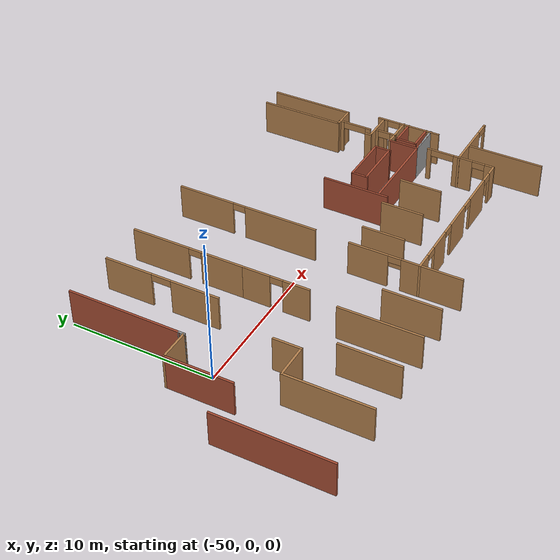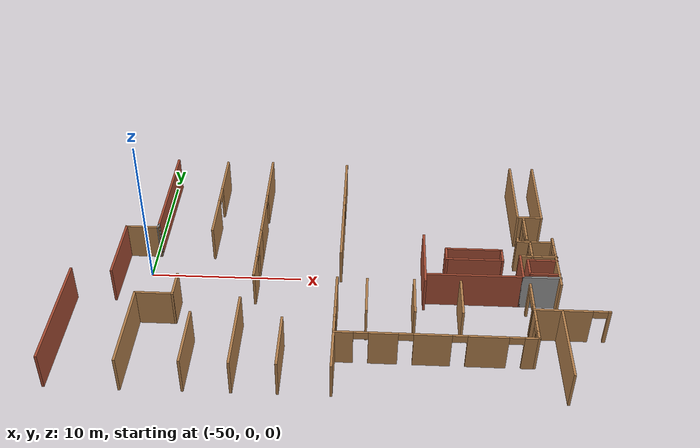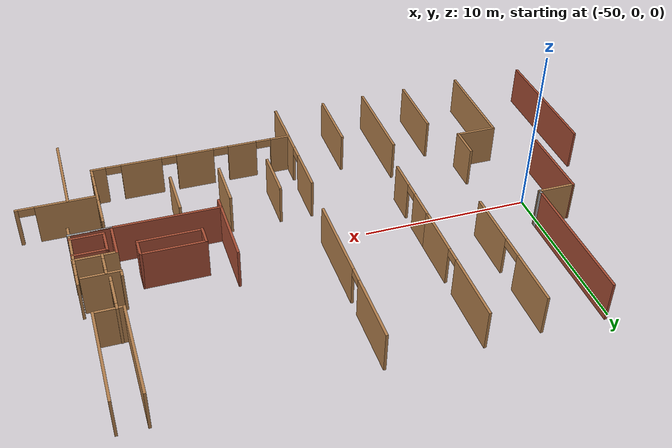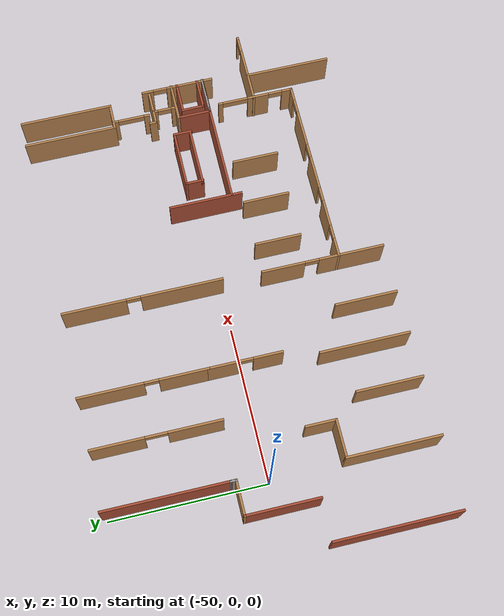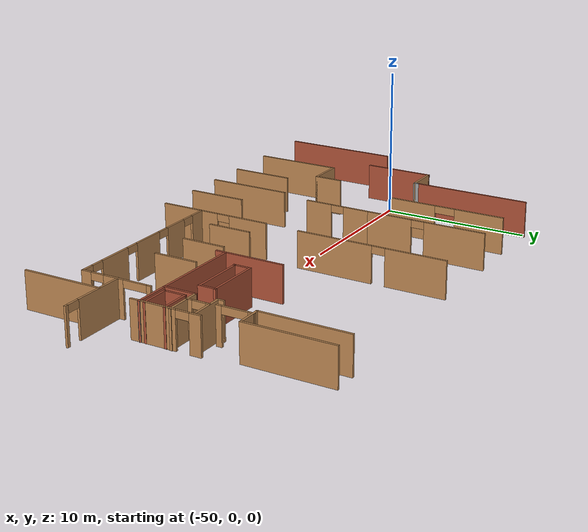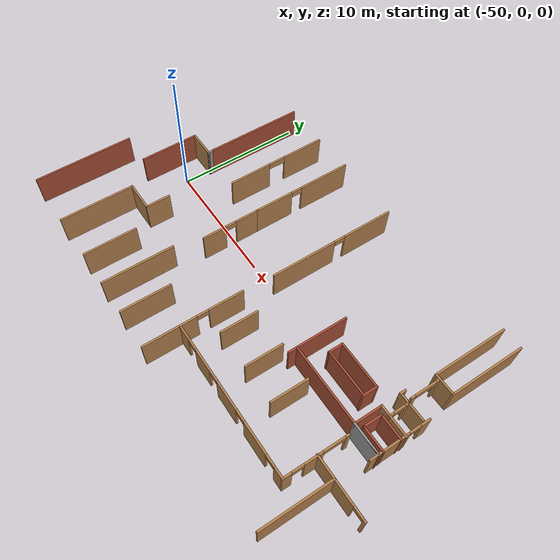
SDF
<sdf version="1.6">
 <model name="third_floor">
  <pose>-4.00866 -0.044756 0 0 -0 0</pose>
  <link name="Wall_10">
   <collision name="Wall_10_Collision">
    <geometry><box><size>2.28863 0.15 2.5</size></box></geometry>
    <pose>0 0 1.25 0 -0 0</pose>
   </collision>
   <visual name="Wall_10_Visual">
    <pose>0 0 1.25 0 -0 0</pose>
    <geometry><box><size>2.28863 0.15 2.5</size></box></geometry>
    <material>
     <script><uri>file://media/materials/scripts/gazebo.material</uri><name>Gazebo/Wood</name></script>
     <ambient>1 1 1 1</ambient>
    </material>
   </visual>
   <pose>-46.7968 2.06319 0 0 0 -0.001948</pose>
  </link>
  <link name="Wall_13">
   <collision name="Wall_13_Collision">
    <geometry><box><size>0.46611 0.15 2.5</size></box></geometry>
    <pose>0 0 1.25 0 -0 0</pose>
   </collision>
   <visual name="Wall_13_Visual">
    <pose>0 0 1.25 0 -0 0</pose>
    <geometry><box><size>0.46611 0.15 2.5</size></box></geometry>
    <material>
     <script><uri>file://media/materials/scripts/gazebo.material</uri><name>Gazebo/Grey</name></script>
     <ambient>1 1 1 1</ambient>
    </material>
   </visual>
   <pose>-45.7292 2.21916 0 0 -0 1.58134</pose>
  </link>
  <link name="Wall_134">
   <pose>-19.4066 -0.197269 0 0 0 -1.5708</pose>
   <visual name="Wall_134_Visual_0">
    <pose>-1.99521 0 1.25 0 -0 0</pose>
    <geometry><box><size>0.75958 0.15 2.5</size></box></geometry>
    <material>
     <script><uri>file://media/materials/scripts/gazebo.material</uri><name>Gazebo/Wood</name></script>
     <ambient>1 1 1 1</ambient>
    </material>
   </visual>
   <collision name="Wall_134_Collision_0">
    <geometry><box><size>0.75958 0.15 2.5</size></box></geometry>
    <pose>-1.99521 0 1.25 0 -0 0</pose>
   </collision>
   <visual name="Wall_134_Visual_1">
    <pose>0.82979 0 1.25 0 -0 0</pose>
    <geometry><box><size>3.09042 0.15 2.5</size></box></geometry>
    <material>
     <script><uri>file://media/materials/scripts/gazebo.material</uri><name>Gazebo/Wood</name></script>
     <ambient>1 1 1 1</ambient>
    </material>
   </visual>
   <collision name="Wall_134_Collision_1">
    <geometry><box><size>3.09042 0.15 2.5</size></box></geometry>
    <pose>0.82979 0 1.25 0 -0 0</pose>
   </collision>
   <visual name="Wall_134_Visual_2">
    <pose>-1.16542 0 2.25 0 -0 0</pose>
    <geometry><box><size>0.9 0.15 0.5</size></box></geometry>
    <material>
     <script><uri>file://media/materials/scripts/gazebo.material</uri><name>Gazebo/Wood</name></script>
     <ambient>1 1 1 1</ambient>
    </material>
   </visual>
   <collision name="Wall_134_Collision_2">
    <geometry><box><size>0.9 0.15 0.5</size></box></geometry>
    <pose>-1.16542 0 2.25 0 -0 0</pose>
   </collision>
  </link>
  <link name="Wall_136">
   <collision name="Wall_136_Collision">
    <geometry><box><size>2.5 0.15 2.5</size></box></geometry>
    <pose>0 0 1.25 0 -0 0</pose>
   </collision>
   <visual name="Wall_136_Visual">
    <pose>0 0 1.25 0 -0 0</pose>
    <geometry><box><size>2.5 0.15 2.5</size></box></geometry>
    <material>
     <script><uri>file://media/materials/scripts/gazebo.material</uri><name>Gazebo/Wood</name></script>
     <ambient>1 1 1 1</ambient>
    </material>
   </visual>
   <pose>-20.5351 0.19525 0 0 -0 3.14159</pose>
  </link>
  <link name="Wall_137">
   <collision name="Wall_137_Collision">
    <geometry><box><size>2.25 0.15 2.5</size></box></geometry>
    <pose>0 0 1.25 0 -0 0</pose>
   </collision>
   <visual name="Wall_137_Visual">
    <pose>0 0 1.25 0 -0 0</pose>
    <geometry><box><size>2.25 0.15 2.5</size></box></geometry>
    <material>
     <script><uri>file://media/materials/scripts/gazebo.material</uri><name>Gazebo/Bricks</name></script>
     <ambient>1 1 1 1</ambient>
    </material>
   </visual>
   <pose>-21.7101 -0.85475 0 0 0 -1.5708</pose>
  </link>
  <link name="Wall_138">
   <collision name="Wall_138_Collision">
    <geometry><box><size>2.5 0.15 2.5</size></box></geometry>
    <pose>0 0 1.25 0 -0 0</pose>
   </collision>
   <visual name="Wall_138_Visual">
    <pose>0 0 1.25 0 -0 0</pose>
    <geometry><box><size>2.5 0.15 2.5</size></box></geometry>
    <material>
     <script><uri>file://media/materials/scripts/gazebo.material</uri><name>Gazebo/Grey</name></script>
     <ambient>1 1 1 1</ambient>
    </material>
   </visual>
   <pose>-20.5351 -1.90475 0 0 -0 0</pose>
  </link>
  <link name="Wall_146">
   <collision name="Wall_146_Collision">
    <geometry><box><size>2 0.15 2.5</size></box></geometry>
    <pose>0 0 1.25 0 -0 0</pose>
   </collision>
   <visual name="Wall_146_Visual">
    <pose>0 0 1.25 0 -0 0</pose>
    <geometry><box><size>2 0.15 2.5</size></box></geometry>
    <material>
     <script><uri>file://media/materials/scripts/gazebo.material</uri><name>Gazebo/Bricks</name></script>
     <ambient>1 1 1 1</ambient>
    </material>
   </visual>
   <pose>-20.3056 -0.187196 0 0 -0 3.14159</pose>
  </link>
  <link name="Wall_147">
   <collision name="Wall_147_Collision">
    <geometry><box><size>1.51744 0.15 2.5</size></box></geometry>
    <pose>0 0 1.25 0 -0 0</pose>
   </collision>
   <visual name="Wall_147_Visual">
    <pose>0 0 1.25 0 -0 0</pose>
    <geometry><box><size>1.51744 0.15 2.5</size></box></geometry>
    <material>
     <script><uri>file://media/materials/scripts/gazebo.material</uri><name>Gazebo/Bricks</name></script>
     <ambient>1 1 1 1</ambient>
    </material>
   </visual>
   <pose>-21.2496 -0.870915 0 0 0 -1.56855</pose>
  </link>
  <link name="Wall_148">
   <collision name="Wall_148_Collision">
    <geometry><box><size>2 0.15 2.5</size></box></geometry>
    <pose>0 0 1.25 0 -0 0</pose>
   </collision>
   <visual name="Wall_148_Visual">
    <pose>0 0 1.25 0 -0 0</pose>
    <geometry><box><size>2 0.15 2.5</size></box></geometry>
    <material>
     <script><uri>file://media/materials/scripts/gazebo.material</uri><name>Gazebo/Bricks</name></script>
     <ambient>1 1 1 1</ambient>
    </material>
   </visual>
   <pose>-20.3128 -1.55463 0 0 -0 0</pose>
  </link>
  <link name="Wall_162">
   <collision name="Wall_162_Collision">
    <geometry><box><size>0.5 0.15 2.5</size></box></geometry>
    <pose>0 0 1.25 0 -0 0</pose>
   </collision>
   <visual name="Wall_162_Visual">
    <pose>0 0 1.25 0 -0 0</pose>
    <geometry><box><size>0.5 0.15 2.5</size></box></geometry>
    <material>
     <script><uri>file://media/materials/scripts/gazebo.material</uri><name>Gazebo/Wood</name></script>
     <ambient>1 1 1 1</ambient>
    </material>
   </visual>
   <pose>-21.7009 1.88776 0 0 0 -1.5708</pose>
  </link>
  <link name="Wall_163">
   <collision name="Wall_163_Collision">
    <geometry><box><size>2.25 0.15 2.5</size></box></geometry>
    <pose>0 0 1.25 0 -0 0</pose>
   </collision>
   <visual name="Wall_163_Visual">
    <pose>0 0 1.25 0 -0 0</pose>
    <geometry><box><size>2.25 0.15 2.5</size></box></geometry>
    <material>
     <script><uri>file://media/materials/scripts/gazebo.material</uri><name>Gazebo/Wood</name></script>
     <ambient>1 1 1 1</ambient>
    </material>
   </visual>
   <pose>-20.6509 1.71276 0 0 -0 0</pose>
  </link>
  <link name="Wall_165">
   <pose>-20.9277 0.928618 0 0 0 -1.56979</pose>
   <visual name="Wall_165_Visual_0">
    <pose>-0.664878 0 1.25 0 -0 0</pose>
    <geometry><box><size>0.314831 0.15 2.5</size></box></geometry>
    <material>
     <script><uri>file://media/materials/scripts/gazebo.material</uri><name>Gazebo/Wood</name></script>
     <ambient>1 1 1 1</ambient>
    </material>
   </visual>
   <collision name="Wall_165_Collision_0">
    <geometry><box><size>0.314831 0.15 2.5</size></box></geometry>
    <pose>-0.664878 0 1.25 0 -0 0</pose>
   </collision>
   <visual name="Wall_165_Visual_1">
    <pose>0.607416 0 1.25 0 -0 0</pose>
    <geometry><box><size>0.429757 0.15 2.5</size></box></geometry>
    <material>
     <script><uri>file://media/materials/scripts/gazebo.material</uri><name>Gazebo/Wood</name></script>
     <ambient>1 1 1 1</ambient>
    </material>
   </visual>
   <collision name="Wall_165_Collision_1">
    <geometry><box><size>0.429757 0.15 2.5</size></box></geometry>
    <pose>0.607416 0 1.25 0 -0 0</pose>
   </collision>
   <visual name="Wall_165_Visual_2">
    <pose>-0.057463 0 2.25 0 -0 0</pose>
    <geometry><box><size>0.9 0.15 0.5</size></box></geometry>
    <material>
     <script><uri>file://media/materials/scripts/gazebo.material</uri><name>Gazebo/Wood</name></script>
     <ambient>1 1 1 1</ambient>
    </material>
   </visual>
   <collision name="Wall_165_Collision_2">
    <geometry><box><size>0.9 0.15 0.5</size></box></geometry>
    <pose>-0.057463 0 2.25 0 -0 0</pose>
   </collision>
  </link>
  <link name="Wall_168">
   <collision name="Wall_168_Collision">
    <geometry><box><size>4.75 0.15 2.5</size></box></geometry>
    <pose>0 0 1.25 0 -0 0</pose>
   </collision>
   <visual name="Wall_168_Visual">
    <pose>0 0 1.25 0 -0 0</pose>
    <geometry><box><size>4.75 0.15 2.5</size></box></geometry>
    <material>
     <script><uri>file://media/materials/scripts/gazebo.material</uri><name>Gazebo/Bricks</name></script>
     <ambient>1 1 1 1</ambient>
    </material>
   </visual>
   <pose>-27.8909 -0.217787 0 0 0 -1.5708</pose>
  </link>
  <link name="Wall_172">
   <collision name="Wall_172_Collision">
    <geometry><box><size>8.64986 0.15 2.5</size></box></geometry>
    <pose>0 0 1.25 0 -0 0</pose>
   </collision>
   <visual name="Wall_172_Visual">
    <pose>0 0 1.25 0 -0 0</pose>
    <geometry><box><size>8.64986 0.15 2.5</size></box></geometry>
    <material>
     <script><uri>file://media/materials/scripts/gazebo.material</uri><name>Gazebo/Bricks</name></script>
     <ambient>1 1 1 1</ambient>
    </material>
   </visual>
   <pose>-23.61 -1.90275 0 0 -0 3.14112</pose>
  </link>
  <link name="Wall_180">
   <collision name="Wall_180_Collision">
    <geometry><box><size>6 0.15 2.5</size></box></geometry>
    <pose>0 0 1.25 0 -0 0</pose>
   </collision>
   <visual name="Wall_180_Visual">
    <pose>0 0 1.25 0 -0 0</pose>
    <geometry><box><size>6 0.15 2.5</size></box></geometry>
    <material>
     <script><uri>file://media/materials/scripts/gazebo.material</uri><name>Gazebo/Wood</name></script>
     <ambient>1 1 1 1</ambient>
    </material>
   </visual>
   <pose>-21.4505 7.33512 0 0 0 -1.5708</pose>
  </link>
  <link name="Wall_181">
   <collision name="Wall_181_Collision">
    <geometry><box><size>1.75 0.15 2.5</size></box></geometry>
    <pose>0 0 1.25 0 -0 0</pose>
   </collision>
   <visual name="Wall_181_Visual">
    <pose>0 0 1.25 0 -0 0</pose>
    <geometry><box><size>1.75 0.15 2.5</size></box></geometry>
    <material>
     <script><uri>file://media/materials/scripts/gazebo.material</uri><name>Gazebo/Wood</name></script>
     <ambient>1 1 1 1</ambient>
    </material>
   </visual>
   <pose>-20.6505 4.41013 0 0 -0 0</pose>
  </link>
  <link name="Wall_182">
   <collision name="Wall_182_Collision">
    <geometry><box><size>6 0.15 2.5</size></box></geometry>
    <pose>0 0 1.25 0 -0 0</pose>
   </collision>
   <visual name="Wall_182_Visual">
    <pose>0 0 1.25 0 -0 0</pose>
    <geometry><box><size>6 0.15 2.5</size></box></geometry>
    <material>
     <script><uri>file://media/materials/scripts/gazebo.material</uri><name>Gazebo/Wood</name></script>
     <ambient>1 1 1 1</ambient>
    </material>
   </visual>
   <pose>-19.8505 7.33512 0 0 -0 1.5708</pose>
  </link>
  <link name="Wall_220">
   <pose>-21.0801 3.26181 0 0 0 -1.5708</pose>
   <visual name="Wall_220_Visual_0">
    <pose>-1.04045 0 1.25 0 -0 0</pose>
    <geometry><box><size>0.419092 0.15 2.5</size></box></geometry>
    <material>
     <script><uri>file://media/materials/scripts/gazebo.material</uri><name>Gazebo/Wood</name></script>
     <ambient>1 1 1 1</ambient>
    </material>
   </visual>
   <collision name="Wall_220_Collision_0">
    <geometry><box><size>0.419092 0.15 2.5</size></box></geometry>
    <pose>-1.04045 0 1.25 0 -0 0</pose>
   </collision>
   <visual name="Wall_220_Visual_1">
    <pose>1.06175 0 1.25 0 -0 0</pose>
    <geometry><box><size>0.376504 0.15 2.5</size></box></geometry>
    <material>
     <script><uri>file://media/materials/scripts/gazebo.material</uri><name>Gazebo/Wood</name></script>
     <ambient>1 1 1 1</ambient>
    </material>
   </visual>
   <collision name="Wall_220_Collision_1">
    <geometry><box><size>0.376504 0.15 2.5</size></box></geometry>
    <pose>1.06175 0 1.25 0 -0 0</pose>
   </collision>
   <visual name="Wall_220_Visual_2">
    <pose>0.021294 0 2.25 0 -0 0</pose>
    <geometry><box><size>1.7044 0.15 0.5</size></box></geometry>
    <material>
     <script><uri>file://media/materials/scripts/gazebo.material</uri><name>Gazebo/Wood</name></script>
     <ambient>1 1 1 1</ambient>
    </material>
   </visual>
   <collision name="Wall_220_Collision_2">
    <geometry><box><size>1.7044 0.15 0.5</size></box></geometry>
    <pose>0.021294 0 2.25 0 -0 0</pose>
   </collision>
  </link>
  <link name="Wall_229">
   <collision name="Wall_229_Collision">
    <geometry><box><size>3 0.15 2.5</size></box></geometry>
    <pose>0 0 1.25 0 -0 0</pose>
   </collision>
   <visual name="Wall_229_Visual">
    <pose>0 0 1.25 0 -0 0</pose>
    <geometry><box><size>3 0.15 2.5</size></box></geometry>
    <material>
     <script><uri>file://media/materials/scripts/gazebo.material</uri><name>Gazebo/Wood</name></script>
     <ambient>1 1 1 1</ambient>
    </material>
   </visual>
   <pose>-31.5578 -4.03028 0 0 0 -1.5708</pose>
  </link>
  <link name="Wall_231">
   <collision name="Wall_231_Collision">
    <geometry><box><size>3 0.15 2.5</size></box></geometry>
    <pose>0 0 1.25 0 -0 0</pose>
   </collision>
   <visual name="Wall_231_Visual">
    <pose>0 0 1.25 0 -0 0</pose>
    <geometry><box><size>3 0.15 2.5</size></box></geometry>
    <material>
     <script><uri>file://media/materials/scripts/gazebo.material</uri><name>Gazebo/Wood</name></script>
     <ambient>1 1 1 1</ambient>
    </material>
   </visual>
   <pose>-28.5928 -3.99503 0 0 0 -1.5708</pose>
  </link>
  <link name="Wall_233">
   <collision name="Wall_233_Collision">
    <geometry><box><size>3 0.15 2.5</size></box></geometry>
    <pose>0 0 1.25 0 -0 0</pose>
   </collision>
   <visual name="Wall_233_Visual">
    <pose>0 0 1.25 0 -0 0</pose>
    <geometry><box><size>3 0.15 2.5</size></box></geometry>
    <material>
     <script><uri>file://media/materials/scripts/gazebo.material</uri><name>Gazebo/Wood</name></script>
     <ambient>1 1 1 1</ambient>
    </material>
   </visual>
   <pose>-25.6753 -3.99543 0 0 0 -1.5708</pose>
  </link>
  <link name="Wall_242">
   <collision name="Wall_242_Collision">
    <geometry><box><size>1.22688 0.15 2.5</size></box></geometry>
    <pose>0 0 1.25 0 -0 0</pose>
   </collision>
   <visual name="Wall_242_Visual">
    <pose>0 0 1.25 0 -0 0</pose>
    <geometry><box><size>1.22688 0.15 2.5</size></box></geometry>
    <material>
     <script><uri>file://media/materials/scripts/gazebo.material</uri><name>Gazebo/Bricks</name></script>
     <ambient>1 1 1 1</ambient>
    </material>
   </visual>
   <pose>-26.4679 0.194461 0 0 0 -1.5708</pose>
  </link>
  <link name="Wall_243">
   <collision name="Wall_243_Collision">
    <geometry><box><size>3.75 0.15 2.5</size></box></geometry>
    <pose>0 0 1.25 0 -0 0</pose>
   </collision>
   <visual name="Wall_243_Visual">
    <pose>0 0 1.25 0 -0 0</pose>
    <geometry><box><size>3.75 0.15 2.5</size></box></geometry>
    <material>
     <script><uri>file://media/materials/scripts/gazebo.material</uri><name>Gazebo/Bricks</name></script>
     <ambient>1 1 1 1</ambient>
    </material>
   </visual>
   <pose>-24.6679 -0.302729 0 0 -0 0</pose>
  </link>
  <link name="Wall_244">
   <collision name="Wall_244_Collision">
    <geometry><box><size>1.22688 0.15 2.5</size></box></geometry>
    <pose>0 0 1.25 0 -0 0</pose>
   </collision>
   <visual name="Wall_244_Visual">
    <pose>0 0 1.25 0 -0 0</pose>
    <geometry><box><size>1.22688 0.15 2.5</size></box></geometry>
    <material>
     <script><uri>file://media/materials/scripts/gazebo.material</uri><name>Gazebo/Bricks</name></script>
     <ambient>1 1 1 1</ambient>
    </material>
   </visual>
   <pose>-22.8679 0.194461 0 0 -0 1.5708</pose>
  </link>
  <link name="Wall_245">
   <collision name="Wall_245_Collision">
    <geometry><box><size>3.75 0.15 2.5</size></box></geometry>
    <pose>0 0 1.25 0 -0 0</pose>
   </collision>
   <visual name="Wall_245_Visual">
    <pose>0 0 1.25 0 -0 0</pose>
    <geometry><box><size>3.75 0.15 2.5</size></box></geometry>
    <material>
     <script><uri>file://media/materials/scripts/gazebo.material</uri><name>Gazebo/Bricks</name></script>
     <ambient>1 1 1 1</ambient>
    </material>
   </visual>
   <pose>-24.6679 0.732903 0 0 -0 3.14159</pose>
  </link>
  <link name="Wall_3">
   <collision name="Wall_3_Collision">
    <geometry><box><size>7.98809 0.15 2.5</size></box></geometry>
    <pose>0 0 1.25 0 -0 0</pose>
   </collision>
   <visual name="Wall_3_Visual">
    <pose>0 0 1.25 0 -0 0</pose>
    <geometry><box><size>7.98809 0.15 2.5</size></box></geometry>
    <material>
     <script><uri>file://media/materials/scripts/gazebo.material</uri><name>Gazebo/Bricks</name></script>
     <ambient>1 1 1 1</ambient>
    </material>
   </visual>
   <pose>-45.7234 6.29624 0 0 -0 1.56889</pose>
  </link>
  <link name="Wall_33">
   <collision name="Wall_33_Collision">
    <geometry><box><size>8 0.15 2.5</size></box></geometry>
    <pose>0 0 1.25 0 -0 0</pose>
   </collision>
   <visual name="Wall_33_Visual">
    <pose>0 0 1.25 0 -0 0</pose>
    <geometry><box><size>8 0.15 2.5</size></box></geometry>
    <material>
     <script><uri>file://media/materials/scripts/gazebo.material</uri><name>Gazebo/Bricks</name></script>
     <ambient>1 1 1 1</ambient>
    </material>
   </visual>
   <pose>-50.4776 -6.46389 0 0 0 -1.5708</pose>
  </link>
  <link name="Wall_38">
   <pose>-38.7586 -0.184782 0 0 0 -1.5708</pose>
   <visual name="Wall_38_Visual_0">
    <pose>-1.39379 0 1.25 0 -0 0</pose>
    <geometry><box><size>1.96241 0.15 2.5</size></box></geometry>
    <material>
     <script><uri>file://media/materials/scripts/gazebo.material</uri><name>Gazebo/Wood</name></script>
     <ambient>1 1 1 1</ambient>
    </material>
   </visual>
   <collision name="Wall_38_Collision_0">
    <geometry><box><size>1.96241 0.15 2.5</size></box></geometry>
    <pose>-1.39379 0 1.25 0 -0 0</pose>
   </collision>
   <visual name="Wall_38_Visual_1">
    <pose>1.43121 0 1.25 0 -0 0</pose>
    <geometry><box><size>1.88759 0.15 2.5</size></box></geometry>
    <material>
     <script><uri>file://media/materials/scripts/gazebo.material</uri><name>Gazebo/Wood</name></script>
     <ambient>1 1 1 1</ambient>
    </material>
   </visual>
   <collision name="Wall_38_Collision_1">
    <geometry><box><size>1.88759 0.15 2.5</size></box></geometry>
    <pose>1.43121 0 1.25 0 -0 0</pose>
   </collision>
   <visual name="Wall_38_Visual_2">
    <pose>0.037409 0 2.25 0 -0 0</pose>
    <geometry><box><size>0.9 0.15 0.5</size></box></geometry>
    <material>
     <script><uri>file://media/materials/scripts/gazebo.material</uri><name>Gazebo/Wood</name></script>
     <ambient>1 1 1 1</ambient>
    </material>
   </visual>
   <collision name="Wall_38_Collision_2">
    <geometry><box><size>0.9 0.15 0.5</size></box></geometry>
    <pose>0.037409 0 2.25 0 -0 0</pose>
   </collision>
  </link>
  <link name="Wall_40">
   <pose>-33.3181 5.05677 0 0 0 -1.5708</pose>
   <visual name="Wall_40_Visual_0">
    <pose>-3.07567 0 1.25 0 -0 0</pose>
    <geometry><box><size>4.09866 0.15 2.5</size></box></geometry>
    <material>
     <script><uri>file://media/materials/scripts/gazebo.material</uri><name>Gazebo/Wood</name></script>
     <ambient>1 1 1 1</ambient>
    </material>
   </visual>
   <collision name="Wall_40_Collision_0">
    <geometry><box><size>4.09866 0.15 2.5</size></box></geometry>
    <pose>-3.07567 0 1.25 0 -0 0</pose>
   </collision>
   <visual name="Wall_40_Visual_1">
    <pose>2.49933 0 1.25 0 -0 0</pose>
    <geometry><box><size>5.25134 0.15 2.5</size></box></geometry>
    <material>
     <script><uri>file://media/materials/scripts/gazebo.material</uri><name>Gazebo/Wood</name></script>
     <ambient>1 1 1 1</ambient>
    </material>
   </visual>
   <collision name="Wall_40_Collision_1">
    <geometry><box><size>5.25134 0.15 2.5</size></box></geometry>
    <pose>2.49933 0 1.25 0 -0 0</pose>
   </collision>
   <visual name="Wall_40_Visual_2">
    <pose>-0.576335 0 2.25 0 -0 0</pose>
    <geometry><box><size>0.9 0.15 0.5</size></box></geometry>
    <material>
     <script><uri>file://media/materials/scripts/gazebo.material</uri><name>Gazebo/Wood</name></script>
     <ambient>1 1 1 1</ambient>
    </material>
   </visual>
   <collision name="Wall_40_Collision_2">
    <geometry><box><size>0.9 0.15 0.5</size></box></geometry>
    <pose>-0.576335 0 2.25 0 -0 0</pose>
   </collision>
  </link>
  <link name="Wall_42">
   <pose>-38.7586 6.16522 0 0 -0 1.5708</pose>
   <visual name="Wall_42_Visual_0">
    <pose>-2.54325 0 1.25 0 -0 0</pose>
    <geometry><box><size>3.16351 0.15 2.5</size></box></geometry>
    <material>
     <script><uri>file://media/materials/scripts/gazebo.material</uri><name>Gazebo/Wood</name></script>
     <ambient>1 1 1 1</ambient>
    </material>
   </visual>
   <collision name="Wall_42_Collision_0">
    <geometry><box><size>3.16351 0.15 2.5</size></box></geometry>
    <pose>-2.54325 0 1.25 0 -0 0</pose>
   </collision>
   <visual name="Wall_42_Visual_1">
    <pose>2.03175 0 1.25 0 -0 0</pose>
    <geometry><box><size>4.18649 0.15 2.5</size></box></geometry>
    <material>
     <script><uri>file://media/materials/scripts/gazebo.material</uri><name>Gazebo/Wood</name></script>
     <ambient>1 1 1 1</ambient>
    </material>
   </visual>
   <collision name="Wall_42_Collision_1">
    <geometry><box><size>4.18649 0.15 2.5</size></box></geometry>
    <pose>2.03175 0 1.25 0 -0 0</pose>
   </collision>
   <visual name="Wall_42_Visual_2">
    <pose>-0.511489 0 2.25 0 -0 0</pose>
    <geometry><box><size>0.9 0.15 0.5</size></box></geometry>
    <material>
     <script><uri>file://media/materials/scripts/gazebo.material</uri><name>Gazebo/Wood</name></script>
     <ambient>1 1 1 1</ambient>
    </material>
   </visual>
   <collision name="Wall_42_Collision_2">
    <geometry><box><size>0.9 0.15 0.5</size></box></geometry>
    <pose>-0.511489 0 2.25 0 -0 0</pose>
   </collision>
  </link>
  <link name="Wall_44">
   <pose>-42.0333 6.05533 0 0 -0 1.5708</pose>
   <visual name="Wall_44_Visual_0">
    <pose>-2.41095 0 1.25 0 -0 0</pose>
    <geometry><box><size>3.42809 0.15 2.5</size></box></geometry>
    <material>
     <script><uri>file://media/materials/scripts/gazebo.material</uri><name>Gazebo/Wood</name></script>
     <ambient>1 1 1 1</ambient>
    </material>
   </visual>
   <collision name="Wall_44_Collision_0">
    <geometry><box><size>3.42809 0.15 2.5</size></box></geometry>
    <pose>-2.41095 0 1.25 0 -0 0</pose>
   </collision>
   <visual name="Wall_44_Visual_1">
    <pose>2.41155 0 1.25 0 -0 0</pose>
    <geometry><box><size>3.42689 0.15 2.5</size></box></geometry>
    <material>
     <script><uri>file://media/materials/scripts/gazebo.material</uri><name>Gazebo/Wood</name></script>
     <ambient>1 1 1 1</ambient>
    </material>
   </visual>
   <collision name="Wall_44_Collision_1">
    <geometry><box><size>3.42689 0.15 2.5</size></box></geometry>
    <pose>2.41155 0 1.25 0 -0 0</pose>
   </collision>
   <visual name="Wall_44_Visual_2">
    <pose>0.000599 0 2.25 0 -0 0</pose>
    <geometry><box><size>1.39502 0.15 0.5</size></box></geometry>
    <material>
     <script><uri>file://media/materials/scripts/gazebo.material</uri><name>Gazebo/Wood</name></script>
     <ambient>1 1 1 1</ambient>
    </material>
   </visual>
   <collision name="Wall_44_Collision_2">
    <geometry><box><size>1.39502 0.15 0.5</size></box></geometry>
    <pose>0.000599 0 2.25 0 -0 0</pose>
   </collision>
  </link>
  <link name="Wall_46">
   <collision name="Wall_46_Collision">
    <geometry><box><size>6 0.15 2.5</size></box></geometry>
    <pose>0 0 1.25 0 -0 0</pose>
   </collision>
   <visual name="Wall_46_Visual">
    <pose>0 0 1.25 0 -0 0</pose>
    <geometry><box><size>6 0.15 2.5</size></box></geometry>
    <material>
     <script><uri>file://media/materials/scripts/gazebo.material</uri><name>Gazebo/Wood</name></script>
     <ambient>1 1 1 1</ambient>
    </material>
   </visual>
   <pose>-45.935 -7.50283 0 0 -0 1.5708</pose>
  </link>
  <link name="Wall_47">
   <collision name="Wall_47_Collision">
    <geometry><box><size>2.5 0.15 2.5</size></box></geometry>
    <pose>0 0 1.25 0 -0 0</pose>
   </collision>
   <visual name="Wall_47_Visual">
    <pose>0 0 1.25 0 -0 0</pose>
    <geometry><box><size>2.5 0.15 2.5</size></box></geometry>
    <material>
     <script><uri>file://media/materials/scripts/gazebo.material</uri><name>Gazebo/Wood</name></script>
     <ambient>1 1 1 1</ambient>
    </material>
   </visual>
   <pose>-44.76 -4.57783 0 0 -0 0</pose>
  </link>
  <link name="Wall_48">
   <collision name="Wall_48_Collision">
    <geometry><box><size>2 0.15 2.5</size></box></geometry>
    <pose>0 0 1.25 0 -0 0</pose>
   </collision>
   <visual name="Wall_48_Visual">
    <pose>0 0 1.25 0 -0 0</pose>
    <geometry><box><size>2 0.15 2.5</size></box></geometry>
    <material>
     <script><uri>file://media/materials/scripts/gazebo.material</uri><name>Gazebo/Wood</name></script>
     <ambient>1 1 1 1</ambient>
    </material>
   </visual>
   <pose>-43.585 -3.65283 0 0 -0 1.5708</pose>
  </link>
  <link name="Wall_50">
   <collision name="Wall_50_Collision">
    <geometry><box><size>4.25 0.15 2.5</size></box></geometry>
    <pose>0 0 1.25 0 -0 0</pose>
   </collision>
   <visual name="Wall_50_Visual">
    <pose>0 0 1.25 0 -0 0</pose>
    <geometry><box><size>4.25 0.15 2.5</size></box></geometry>
    <material>
     <script><uri>file://media/materials/scripts/gazebo.material</uri><name>Gazebo/Wood</name></script>
     <ambient>1 1 1 1</ambient>
    </material>
   </visual>
   <pose>-42.2116 -8.296 0 0 -0 1.5708</pose>
  </link>
  <link name="Wall_52">
   <collision name="Wall_52_Collision">
    <geometry><box><size>5.75 0.15 2.5</size></box></geometry>
    <pose>0 0 1.25 0 -0 0</pose>
   </collision>
   <visual name="Wall_52_Visual">
    <pose>0 0 1.25 0 -0 0</pose>
    <geometry><box><size>5.75 0.15 2.5</size></box></geometry>
    <material>
     <script><uri>file://media/materials/scripts/gazebo.material</uri><name>Gazebo/Wood</name></script>
     <ambient>1 1 1 1</ambient>
    </material>
   </visual>
   <pose>-39.3475 -7.546 0 0 -0 1.5708</pose>
  </link>
  <link name="Wall_54">
   <collision name="Wall_54_Collision">
    <geometry><box><size>4 0.15 2.5</size></box></geometry>
    <pose>0 0 1.25 0 -0 0</pose>
   </collision>
   <visual name="Wall_54_Visual">
    <pose>0 0 1.25 0 -0 0</pose>
    <geometry><box><size>4 0.15 2.5</size></box></geometry>
    <material>
     <script><uri>file://media/materials/scripts/gazebo.material</uri><name>Gazebo/Wood</name></script>
     <ambient>1 1 1 1</ambient>
    </material>
   </visual>
   <pose>-36.6061 -8.38008 0 0 -0 1.5708</pose>
  </link>
  <link name="Wall_56">
   <pose>-33.4547 -6.44649 0 0 -0 1.57058</pose>
   <visual name="Wall_56_Visual_0">
    <pose>-1.85365 0 1.25 0 -0 0</pose>
    <geometry><box><size>4.20706 0.15 2.5</size></box></geometry>
    <material>
     <script><uri>file://media/materials/scripts/gazebo.material</uri><name>Gazebo/Wood</name></script>
     <ambient>1 1 1 1</ambient>
    </material>
   </visual>
   <collision name="Wall_56_Collision_0">
    <geometry><box><size>4.20706 0.15 2.5</size></box></geometry>
    <pose>-1.85365 0 1.25 0 -0 0</pose>
   </collision>
   <visual name="Wall_56_Visual_1">
    <pose>2.55353 0 1.25 0 -0 0</pose>
    <geometry><box><size>2.8073 0.15 2.5</size></box></geometry>
    <material>
     <script><uri>file://media/materials/scripts/gazebo.material</uri><name>Gazebo/Wood</name></script>
     <ambient>1 1 1 1</ambient>
    </material>
   </visual>
   <collision name="Wall_56_Collision_1">
    <geometry><box><size>2.8073 0.15 2.5</size></box></geometry>
    <pose>2.55353 0 1.25 0 -0 0</pose>
   </collision>
   <visual name="Wall_56_Visual_2">
    <pose>0.699877 0 2.25 0 -0 0</pose>
    <geometry><box><size>0.9 0.15 0.5</size></box></geometry>
    <material>
     <script><uri>file://media/materials/scripts/gazebo.material</uri><name>Gazebo/Wood</name></script>
     <ambient>1 1 1 1</ambient>
    </material>
   </visual>
   <collision name="Wall_56_Collision_2">
    <geometry><box><size>0.9 0.15 0.5</size></box></geometry>
    <pose>0.699877 0 2.25 0 -0 0</pose>
   </collision>
  </link>
  <link name="Wall_58">
   <pose>-27.4055 -7.48186 0 0 -0 0</pose>
   <visual name="Wall_58_Visual_0">
    <pose>-5.50594 0 1.25 0 -0 0</pose>
    <geometry><box><size>1.23812 0.15 2.5</size></box></geometry>
    <material>
     <script><uri>file://media/materials/scripts/gazebo.material</uri><name>Gazebo/Wood</name></script>
     <ambient>1 1 1 1</ambient>
    </material>
   </visual>
   <collision name="Wall_58_Collision_0">
    <geometry><box><size>1.23812 0.15 2.5</size></box></geometry>
    <pose>-5.50594 0 1.25 0 -0 0</pose>
   </collision>
   <visual name="Wall_58_Visual_1">
    <pose>-3.09672 0 1.25 0 -0 0</pose>
    <geometry><box><size>1.78032 0.15 2.5</size></box></geometry>
    <material>
     <script><uri>file://media/materials/scripts/gazebo.material</uri><name>Gazebo/Wood</name></script>
     <ambient>1 1 1 1</ambient>
    </material>
   </visual>
   <collision name="Wall_58_Collision_1">
    <geometry><box><size>1.78032 0.15 2.5</size></box></geometry>
    <pose>-3.09672 0 1.25 0 -0 0</pose>
   </collision>
   <visual name="Wall_58_Visual_2">
    <pose>-0.167349 0 1.25 0 -0 0</pose>
    <geometry><box><size>2.27843 0.15 2.5</size></box></geometry>
    <material>
     <script><uri>file://media/materials/scripts/gazebo.material</uri><name>Gazebo/Wood</name></script>
     <ambient>1 1 1 1</ambient>
    </material>
   </visual>
   <collision name="Wall_58_Collision_2">
    <geometry><box><size>2.27843 0.15 2.5</size></box></geometry>
    <pose>-0.167349 0 1.25 0 -0 0</pose>
   </collision>
   <visual name="Wall_58_Visual_3">
    <pose>3.0941 0 1.25 0 -0 0</pose>
    <geometry><box><size>2.44447 0.15 2.5</size></box></geometry>
    <material>
     <script><uri>file://media/materials/scripts/gazebo.material</uri><name>Gazebo/Wood</name></script>
     <ambient>1 1 1 1</ambient>
    </material>
   </visual>
   <collision name="Wall_58_Collision_3">
    <geometry><box><size>2.44447 0.15 2.5</size></box></geometry>
    <pose>3.0941 0 1.25 0 -0 0</pose>
   </collision>
   <visual name="Wall_58_Visual_4">
    <pose>5.67067 0 1.25 0 -0 0</pose>
    <geometry><box><size>0.908667 0.15 2.5</size></box></geometry>
    <material>
     <script><uri>file://media/materials/scripts/gazebo.material</uri><name>Gazebo/Wood</name></script>
     <ambient>1 1 1 1</ambient>
    </material>
   </visual>
   <collision name="Wall_58_Collision_4">
    <geometry><box><size>0.908667 0.15 2.5</size></box></geometry>
    <pose>5.67067 0 1.25 0 -0 0</pose>
   </collision>
   <visual name="Wall_58_Visual_5">
    <pose>-4.43688 0 2.25 0 -0 0</pose>
    <geometry><box><size>0.9 0.15 0.5</size></box></geometry>
    <material>
     <script><uri>file://media/materials/scripts/gazebo.material</uri><name>Gazebo/Wood</name></script>
     <ambient>1 1 1 1</ambient>
    </material>
   </visual>
   <collision name="Wall_58_Collision_5">
    <geometry><box><size>0.9 0.15 0.5</size></box></geometry>
    <pose>-4.43688 0 2.25 0 -0 0</pose>
   </collision>
   <visual name="Wall_58_Visual_6">
    <pose>-1.75656 0 2.25 0 -0 0</pose>
    <geometry><box><size>0.9 0.15 0.5</size></box></geometry>
    <material>
     <script><uri>file://media/materials/scripts/gazebo.material</uri><name>Gazebo/Wood</name></script>
     <ambient>1 1 1 1</ambient>
    </material>
   </visual>
   <collision name="Wall_58_Collision_6">
    <geometry><box><size>0.9 0.15 0.5</size></box></geometry>
    <pose>-1.75656 0 2.25 0 -0 0</pose>
   </collision>
   <visual name="Wall_58_Visual_7">
    <pose>1.42186 0 2.25 0 -0 0</pose>
    <geometry><box><size>0.9 0.15 0.5</size></box></geometry>
    <material>
     <script><uri>file://media/materials/scripts/gazebo.material</uri><name>Gazebo/Wood</name></script>
     <ambient>1 1 1 1</ambient>
    </material>
   </visual>
   <collision name="Wall_58_Collision_7">
    <geometry><box><size>0.9 0.15 0.5</size></box></geometry>
    <pose>1.42186 0 2.25 0 -0 0</pose>
   </collision>
   <visual name="Wall_58_Visual_8">
    <pose>4.76633 0 2.25 0 -0 0</pose>
    <geometry><box><size>0.9 0.15 0.5</size></box></geometry>
    <material>
     <script><uri>file://media/materials/scripts/gazebo.material</uri><name>Gazebo/Wood</name></script>
     <ambient>1 1 1 1</ambient>
    </material>
   </visual>
   <collision name="Wall_58_Collision_8">
    <geometry><box><size>0.9 0.15 0.5</size></box></geometry>
    <pose>4.76633 0 2.25 0 -0 0</pose>
   </collision>
  </link>
  <link name="Wall_59">
   <pose>-21.3555 -5.05686 0 0 -0 1.5708</pose>
   <visual name="Wall_59_Visual_0">
    <pose>-2.14122 0 1.25 0 -0 0</pose>
    <geometry><box><size>0.717564 0.15 2.5</size></box></geometry>
    <material>
     <script><uri>file://media/materials/scripts/gazebo.material</uri><name>Gazebo/Wood</name></script>
     <ambient>1 1 1 1</ambient>
    </material>
   </visual>
   <collision name="Wall_59_Collision_0">
    <geometry><box><size>0.717564 0.15 2.5</size></box></geometry>
    <pose>-2.14122 0 1.25 0 -0 0</pose>
   </collision>
   <visual name="Wall_59_Visual_1">
    <pose>-0.176104 0 1.25 0 -0 0</pose>
    <geometry><box><size>1.41266 0.15 2.5</size></box></geometry>
    <material>
     <script><uri>file://media/materials/scripts/gazebo.material</uri><name>Gazebo/Wood</name></script>
     <ambient>1 1 1 1</ambient>
    </material>
   </visual>
   <collision name="Wall_59_Collision_1">
    <geometry><box><size>1.41266 0.15 2.5</size></box></geometry>
    <pose>-0.176104 0 1.25 0 -0 0</pose>
   </collision>
   <visual name="Wall_59_Visual_2">
    <pose>2.34463 0 1.25 0 -0 0</pose>
    <geometry><box><size>0.310745 0.15 2.5</size></box></geometry>
    <material>
     <script><uri>file://media/materials/scripts/gazebo.material</uri><name>Gazebo/Wood</name></script>
     <ambient>1 1 1 1</ambient>
    </material>
   </visual>
   <collision name="Wall_59_Collision_2">
    <geometry><box><size>0.310745 0.15 2.5</size></box></geometry>
    <pose>2.34463 0 1.25 0 -0 0</pose>
   </collision>
   <visual name="Wall_59_Visual_3">
    <pose>-1.33244 0 2.25 0 -0 0</pose>
    <geometry><box><size>0.9 0.15 0.5</size></box></geometry>
    <material>
     <script><uri>file://media/materials/scripts/gazebo.material</uri><name>Gazebo/Wood</name></script>
     <ambient>1 1 1 1</ambient>
    </material>
   </visual>
   <collision name="Wall_59_Collision_3">
    <geometry><box><size>0.9 0.15 0.5</size></box></geometry>
    <pose>-1.33244 0 2.25 0 -0 0</pose>
   </collision>
   <visual name="Wall_59_Visual_4">
    <pose>1.35974 0 2.25 0 -0 0</pose>
    <geometry><box><size>1.65903 0.15 0.5</size></box></geometry>
    <material>
     <script><uri>file://media/materials/scripts/gazebo.material</uri><name>Gazebo/Wood</name></script>
     <ambient>1 1 1 1</ambient>
    </material>
   </visual>
   <collision name="Wall_59_Collision_4">
    <geometry><box><size>1.65903 0.15 0.5</size></box></geometry>
    <pose>1.35974 0 2.25 0 -0 0</pose>
   </collision>
  </link>
  <link name="Wall_61">
   <pose>-19.0852 -4.94504 0 0 -0 0</pose>
   <visual name="Wall_61_Visual_0">
    <pose>-0.557018 0 1.25 0 -0 0</pose>
    <geometry><box><size>3.63596 0.15 2.5</size></box></geometry>
    <material>
     <script><uri>file://media/materials/scripts/gazebo.material</uri><name>Gazebo/Wood</name></script>
     <ambient>1 1 1 1</ambient>
    </material>
   </visual>
   <collision name="Wall_61_Collision_0">
    <geometry><box><size>3.63596 0.15 2.5</size></box></geometry>
    <pose>-0.557018 0 1.25 0 -0 0</pose>
   </collision>
   <visual name="Wall_61_Visual_1">
    <pose>2.26798 0 1.25 0 -0 0</pose>
    <geometry><box><size>0.214036 0.15 2.5</size></box></geometry>
    <material>
     <script><uri>file://media/materials/scripts/gazebo.material</uri><name>Gazebo/Wood</name></script>
     <ambient>1 1 1 1</ambient>
    </material>
   </visual>
   <collision name="Wall_61_Collision_1">
    <geometry><box><size>0.214036 0.15 2.5</size></box></geometry>
    <pose>2.26798 0 1.25 0 -0 0</pose>
   </collision>
   <visual name="Wall_61_Visual_2">
    <pose>1.71096 0 2.25 0 -0 0</pose>
    <geometry><box><size>0.9 0.15 0.5</size></box></geometry>
    <material>
     <script><uri>file://media/materials/scripts/gazebo.material</uri><name>Gazebo/Wood</name></script>
     <ambient>1 1 1 1</ambient>
    </material>
   </visual>
   <collision name="Wall_61_Collision_2">
    <geometry><box><size>0.9 0.15 0.5</size></box></geometry>
    <pose>1.71096 0 2.25 0 -0 0</pose>
   </collision>
  </link>
  <link name="Wall_72">
   <collision name="Wall_72_Collision">
    <geometry><box><size>5.5 0.15 2.5</size></box></geometry>
    <pose>0 0 1.25 0 -0 0</pose>
   </collision>
   <visual name="Wall_72_Visual">
    <pose>0 0 1.25 0 -0 0</pose>
    <geometry><box><size>5.5 0.15 2.5</size></box></geometry>
    <material>
     <script><uri>file://media/materials/scripts/gazebo.material</uri><name>Gazebo/Wood</name></script>
     <ambient>1 1 1 1</ambient>
    </material>
   </visual>
   <pose>-19.6845 -7.6376 0 0 0 -1.5708</pose>
  </link>
  <link name="Wall_9">
   <collision name="Wall_9_Collision">
    <geometry><box><size>4.75 0.15 2.5</size></box></geometry>
    <pose>0 0 1.25 0 -0 0</pose>
   </collision>
   <visual name="Wall_9_Visual">
    <pose>0 0 1.25 0 -0 0</pose>
    <geometry><box><size>4.75 0.15 2.5</size></box></geometry>
    <material>
     <script><uri>file://media/materials/scripts/gazebo.material</uri><name>Gazebo/Bricks</name></script>
     <ambient>1 1 1 1</ambient>
    </material>
   </visual>
   <pose>-47.8659 -0.234723 0 0 -0 1.5708</pose>
  </link>
  <static>1</static>
 </model>
</sdf>
